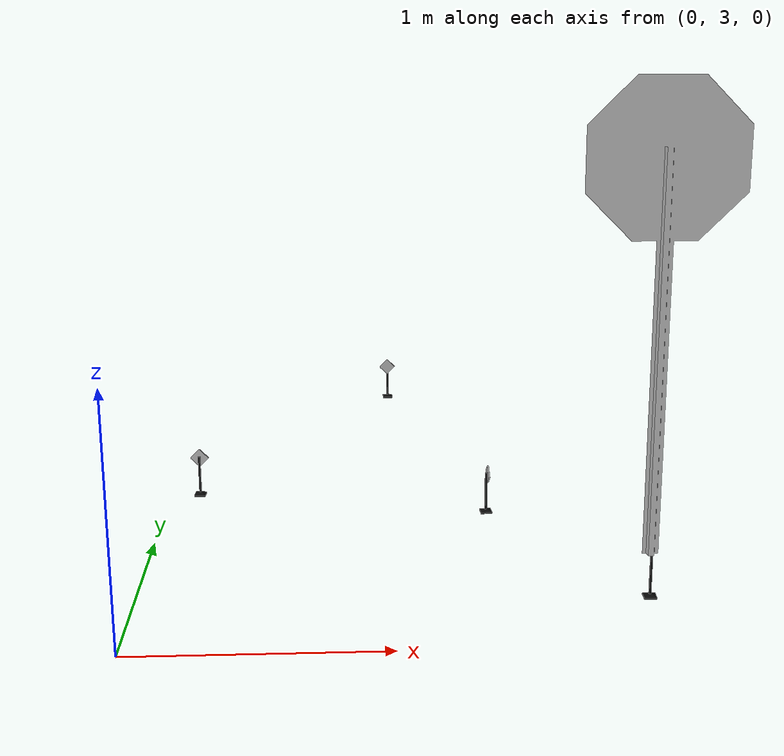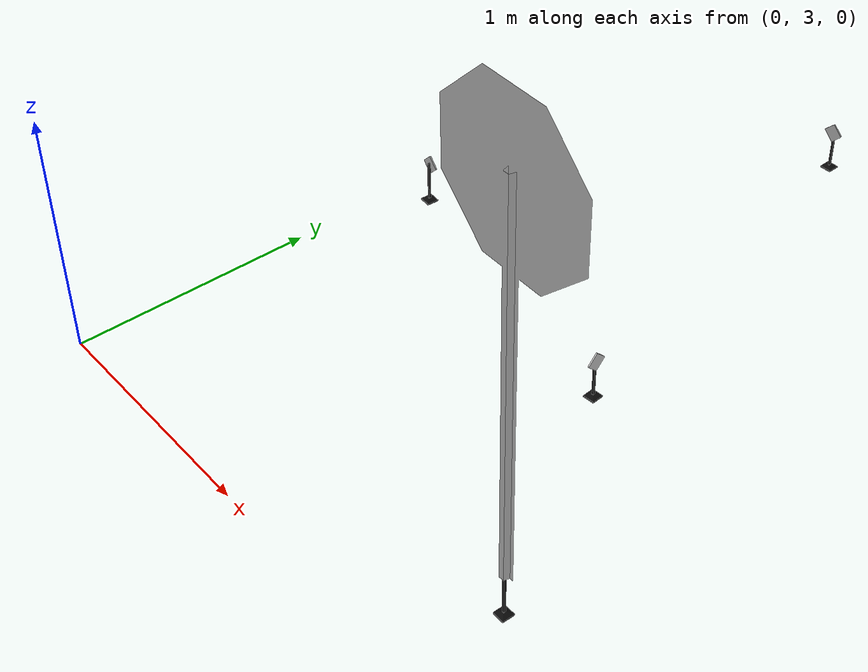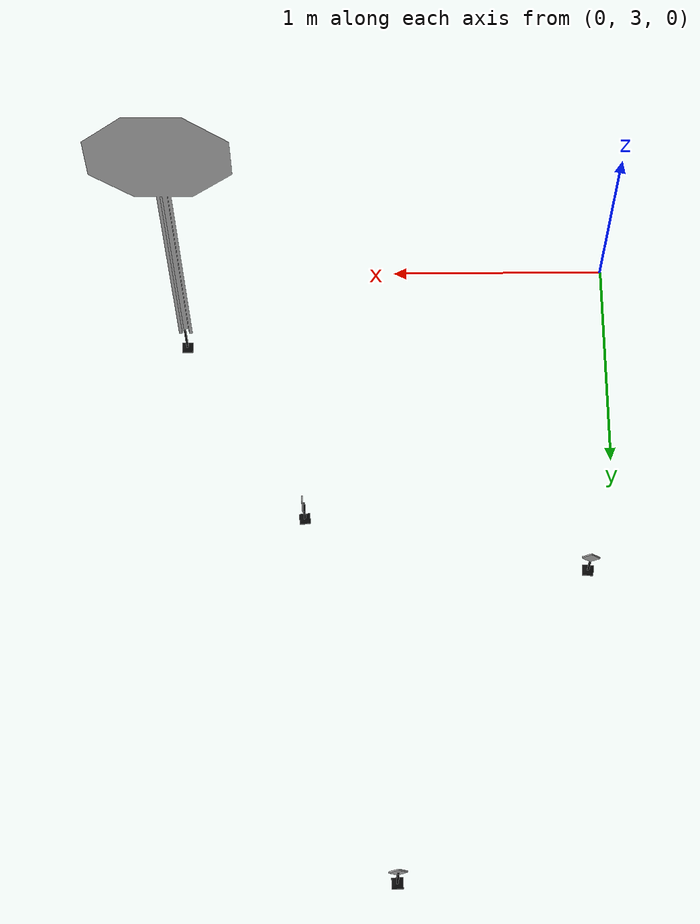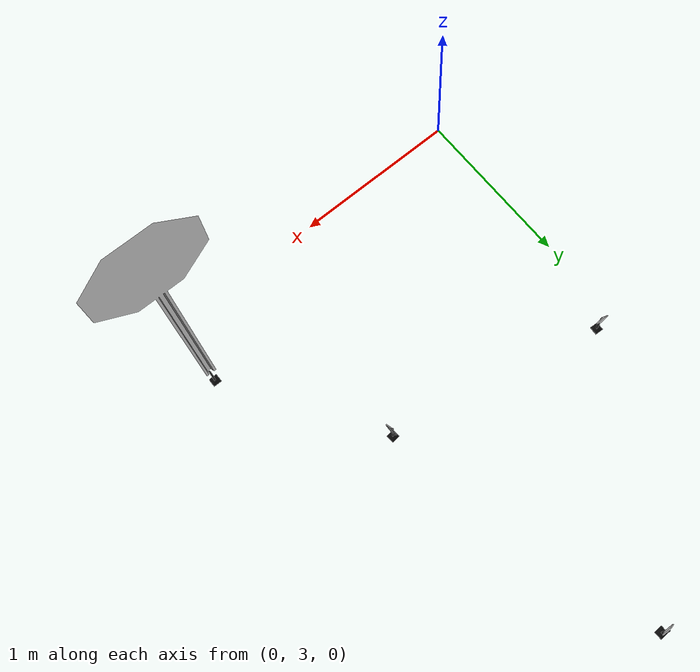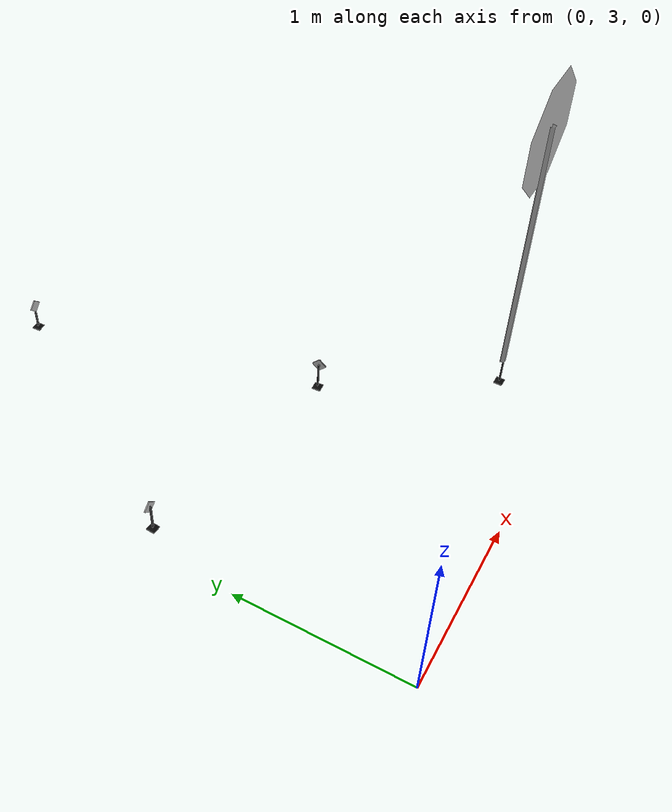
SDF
<sdf version="1.7">
 <world name="bfmc_official">
  <model name="PRIOR_I_clone_clone_0_clone">
   <static>1</static>
   <link name="sign_leg">
    <inertial>
     <mass>0.5</mass>
     <inertia>
      <ixx>0.166667</ixx>
      <ixy>0</ixy>
      <ixz>0</ixz>
      <iyy>0.166667</iyy>
      <iyz>0</iyz>
      <izz>0.166667</izz>
     </inertia>
     <pose>0 0 -0.078998 0 -0 0</pose>
    </inertial>
    <pose>0.002193 -0.000682 -0.07606 0 -0 0</pose>
    <self_collide>1</self_collide>
    <enable_wind>1</enable_wind>
    <visual name="visual">
     <geometry><mesh><uri>model://subassembly/meshes/sign_leg.dae</uri><scale>1 1 1</scale></mesh></geometry>
    </visual>
    <collision name="collision">
     <geometry><mesh><uri>model://subassembly/meshes/sign_leg.dae</uri><scale>1 1 1</scale></mesh></geometry>
     <surface>
      <friction>
       <ode><mu>0.46</mu><mu2>1</mu2><fdir1>0 0 0</fdir1><slip1>0</slip1><slip2>0</slip2></ode>
       <torsional>
        <coefficient>1</coefficient>
        <patch_radius>0</patch_radius>
        <surface_radius>0</surface_radius>
        <use_patch_radius>1</use_patch_radius>
        <ode><slip>0</slip></ode>
       </torsional>
      </friction>
      <bounce><restitution_coefficient>0</restitution_coefficient><threshold>1e+06</threshold></bounce>
      <contact>
       <collide_without_contact>0</collide_without_contact>
       <collide_without_contact_bitmask>1</collide_without_contact_bitmask>
       <collide_bitmask>1</collide_bitmask>
       <ode>
        <soft_cfm>0</soft_cfm>
        <soft_erp>0.2</soft_erp>
        <kp>1e+13</kp>
        <kd>1</kd>
        <max_vel>0.01</max_vel>
        <min_depth>0</min_depth>
       </ode>
       <bullet>
        <split_impulse>1</split_impulse>
        <split_impulse_penetration_threshold>-0.01</split_impulse_penetration_threshold>
        <soft_cfm>0</soft_cfm>
        <soft_erp>0.2</soft_erp>
        <kp>1e+13</kp>
        <kd>1</kd>
       </bullet>
      </contact>
     </surface>
    </collision>
   </link>
   <link name="caro_support">
    <inertial>
     <mass>0.022</mass>
     <inertia>
      <ixx>0.166667</ixx>
      <ixy>0</ixy>
      <ixz>0</ixz>
      <iyy>0.166667</iyy>
      <iyz>0</iyz>
      <izz>0.166667</izz>
     </inertia>
    </inertial>
    <pose>-0.002193 0.000682 0.09894 0 -0 3.14159</pose>
    <self_collide>1</self_collide>
    <enable_wind>1</enable_wind>
    <visual name="visual">
     <geometry>
      <mesh><uri>model://priority_sign/meshes/priority_sign.dae</uri><scale>1 1 1</scale></mesh>
     </geometry>
     <material>
      <lighting>1</lighting>
      <script>
       <uri>model://priority_sign/materials/scripts</uri>
       <uri>model://priority_sign/materials/textures</uri>
       <name>PRIORITY_SIGN</name>
      </script>
      <shader type="vertex"><normal_map>__default__</normal_map></shader>
      <ambient>0.3 0.3 0.3 1</ambient>
      <diffuse>0.7 0.7 0.7 1</diffuse>
      <specular>0.01 0.01 0.01 1</specular>
      <emissive>0 0 0 1</emissive>
     </material>
    </visual>
    <collision name="collision">
     <geometry>
      <mesh><uri>model://priority_sign/meshes/priority_sign.dae</uri><scale>1 1 1</scale></mesh>
     </geometry>
     <surface>
      <friction>
       <ode><mu>0.46</mu><mu2>1</mu2><fdir1>0 0 0</fdir1><slip1>0</slip1><slip2>0</slip2></ode>
       <torsional>
        <coefficient>1</coefficient>
        <patch_radius>0</patch_radius>
        <surface_radius>0</surface_radius>
        <use_patch_radius>1</use_patch_radius>
        <ode><slip>0</slip></ode>
       </torsional>
      </friction>
      <bounce><restitution_coefficient>0</restitution_coefficient><threshold>1e+06</threshold></bounce>
      <contact>
       <collide_without_contact>0</collide_without_contact>
       <collide_without_contact_bitmask>1</collide_without_contact_bitmask>
       <collide_bitmask>1</collide_bitmask>
       <ode>
        <soft_cfm>0</soft_cfm>
        <soft_erp>0.2</soft_erp>
        <kp>1e+13</kp>
        <kd>1</kd>
        <max_vel>0.01</max_vel>
        <min_depth>0</min_depth>
       </ode>
       <bullet>
        <split_impulse>1</split_impulse>
        <split_impulse_penetration_threshold>-0.01</split_impulse_penetration_threshold>
        <soft_cfm>0</soft_cfm>
        <soft_erp>0.2</soft_erp>
        <kp>1e+13</kp>
        <kd>1</kd>
       </bullet>
      </contact>
     </surface>
    </collision>
   </link>
   <joint name="support_to_leg_joint" type="fixed">
    <parent>link_0</parent>
    <child>link_1</child>
    <physics>
     <ode><limit><cfm>0</cfm><erp>0.2</erp></limit><suspension><cfm>0</cfm><erp>0.2</erp></suspension></ode>
    </physics>
   </joint>
   <static>1</static>
   <pose>1.02178 5.99387 0.078998 0 -0 1.61235</pose>
  </model>
  <model name="PRIOR_I_clone_clone_0_clone_0">
   <static>1</static>
   <link name="sign_leg">
    <inertial>
     <mass>0.5</mass>
     <inertia>
      <ixx>0.166667</ixx>
      <ixy>0</ixy>
      <ixz>0</ixz>
      <iyy>0.166667</iyy>
      <iyz>0</iyz>
      <izz>0.166667</izz>
     </inertia>
     <pose>0 0 -0.078998 0 -0 0</pose>
    </inertial>
    <pose>0.002193 -0.000682 -0.07606 0 -0 0</pose>
    <self_collide>1</self_collide>
    <enable_wind>1</enable_wind>
    <visual name="visual">
     <geometry><mesh><uri>model://subassembly/meshes/sign_leg.dae</uri><scale>1 1 1</scale></mesh></geometry>
    </visual>
    <collision name="collision">
     <geometry><mesh><uri>model://subassembly/meshes/sign_leg.dae</uri><scale>1 1 1</scale></mesh></geometry>
     <surface>
      <friction>
       <ode><mu>0.46</mu><mu2>1</mu2><fdir1>0 0 0</fdir1><slip1>0</slip1><slip2>0</slip2></ode>
       <torsional>
        <coefficient>1</coefficient>
        <patch_radius>0</patch_radius>
        <surface_radius>0</surface_radius>
        <use_patch_radius>1</use_patch_radius>
        <ode><slip>0</slip></ode>
       </torsional>
      </friction>
      <bounce><restitution_coefficient>0</restitution_coefficient><threshold>1e+06</threshold></bounce>
      <contact>
       <collide_without_contact>0</collide_without_contact>
       <collide_without_contact_bitmask>1</collide_without_contact_bitmask>
       <collide_bitmask>1</collide_bitmask>
       <ode>
        <soft_cfm>0</soft_cfm>
        <soft_erp>0.2</soft_erp>
        <kp>1e+13</kp>
        <kd>1</kd>
        <max_vel>0.01</max_vel>
        <min_depth>0</min_depth>
       </ode>
       <bullet>
        <split_impulse>1</split_impulse>
        <split_impulse_penetration_threshold>-0.01</split_impulse_penetration_threshold>
        <soft_cfm>0</soft_cfm>
        <soft_erp>0.2</soft_erp>
        <kp>1e+13</kp>
        <kd>1</kd>
       </bullet>
      </contact>
     </surface>
    </collision>
   </link>
   <link name="caro_support">
    <inertial>
     <mass>0.022</mass>
     <inertia>
      <ixx>0.166667</ixx>
      <ixy>0</ixy>
      <ixz>0</ixz>
      <iyy>0.166667</iyy>
      <iyz>0</iyz>
      <izz>0.166667</izz>
     </inertia>
    </inertial>
    <pose>-0.002193 0.000682 0.09894 0 -0 3.14159</pose>
    <self_collide>1</self_collide>
    <enable_wind>1</enable_wind>
    <visual name="visual">
     <geometry>
      <mesh><uri>model://priority_sign/meshes/priority_sign.dae</uri><scale>1 1 1</scale></mesh>
     </geometry>
     <material>
      <lighting>1</lighting>
      <script>
       <uri>model://priority_sign/materials/scripts</uri>
       <uri>model://priority_sign/materials/textures</uri>
       <name>PRIORITY_SIGN</name>
      </script>
      <shader type="vertex"><normal_map>__default__</normal_map></shader>
      <ambient>0.3 0.3 0.3 1</ambient>
      <diffuse>0.7 0.7 0.7 1</diffuse>
      <specular>0.01 0.01 0.01 1</specular>
      <emissive>0 0 0 1</emissive>
     </material>
    </visual>
    <collision name="collision">
     <geometry>
      <mesh><uri>model://priority_sign/meshes/priority_sign.dae</uri><scale>1 1 1</scale></mesh>
     </geometry>
     <surface>
      <friction>
       <ode><mu>0.46</mu><mu2>1</mu2><fdir1>0 0 0</fdir1><slip1>0</slip1><slip2>0</slip2></ode>
       <torsional>
        <coefficient>1</coefficient>
        <patch_radius>0</patch_radius>
        <surface_radius>0</surface_radius>
        <use_patch_radius>1</use_patch_radius>
        <ode><slip>0</slip></ode>
       </torsional>
      </friction>
      <bounce><restitution_coefficient>0</restitution_coefficient><threshold>1e+06</threshold></bounce>
      <contact>
       <collide_without_contact>0</collide_without_contact>
       <collide_without_contact_bitmask>1</collide_without_contact_bitmask>
       <collide_bitmask>1</collide_bitmask>
       <ode>
        <soft_cfm>0</soft_cfm>
        <soft_erp>0.2</soft_erp>
        <kp>1e+13</kp>
        <kd>1</kd>
        <max_vel>0.01</max_vel>
        <min_depth>0</min_depth>
       </ode>
       <bullet>
        <split_impulse>1</split_impulse>
        <split_impulse_penetration_threshold>-0.01</split_impulse_penetration_threshold>
        <soft_cfm>0</soft_cfm>
        <soft_erp>0.2</soft_erp>
        <kp>1e+13</kp>
        <kd>1</kd>
       </bullet>
      </contact>
     </surface>
    </collision>
   </link>
   <joint name="support_to_leg_joint" type="fixed">
    <parent>link_0</parent>
    <child>link_1</child>
    <physics>
     <ode><limit><cfm>0</cfm><erp>0.2</erp></limit><suspension><cfm>0</cfm><erp>0.2</erp></suspension></ode>
    </physics>
   </joint>
   <static>1</static>
   <pose>0.13431 4.55467 0.078998 0 0 -1.63218</pose>
  </model>
  <model name="STOP_I_clone_1_clone_2">
   <static>1</static>
   <link name="sign_leg">
    <inertial>
     <mass>0.5</mass>
     <inertia>
      <ixx>0.166667</ixx>
      <ixy>0</ixy>
      <ixz>0</ixz>
      <iyy>0.166667</iyy>
      <iyz>0</iyz>
      <izz>0.166667</izz>
     </inertia>
     <pose>0 0 -0.078998 0 -0 0</pose>
    </inertial>
    <pose>0.002193 -0.000682 -0.07606 0 -0 0</pose>
    <self_collide>1</self_collide>
    <enable_wind>1</enable_wind>
    <visual name="visual">
     <geometry><mesh><uri>model://subassembly/meshes/sign_leg.dae</uri><scale>1 1 1</scale></mesh></geometry>
    </visual>
    <collision name="collision">
     <geometry><mesh><uri>model://subassembly/meshes/sign_leg.dae</uri><scale>1 1 1</scale></mesh></geometry>
     <surface>
      <friction>
       <ode><mu>0.46</mu><mu2>1</mu2><fdir1>0 0 0</fdir1><slip1>0</slip1><slip2>0</slip2></ode>
       <torsional>
        <coefficient>1</coefficient>
        <patch_radius>0</patch_radius>
        <surface_radius>0</surface_radius>
        <use_patch_radius>1</use_patch_radius>
        <ode><slip>0</slip></ode>
       </torsional>
      </friction>
      <bounce><restitution_coefficient>0</restitution_coefficient><threshold>1e+06</threshold></bounce>
      <contact>
       <collide_without_contact>0</collide_without_contact>
       <collide_without_contact_bitmask>1</collide_without_contact_bitmask>
       <collide_bitmask>1</collide_bitmask>
       <ode>
        <soft_cfm>0</soft_cfm>
        <soft_erp>0.2</soft_erp>
        <kp>1e+13</kp>
        <kd>1</kd>
        <max_vel>0.01</max_vel>
        <min_depth>0</min_depth>
       </ode>
       <bullet>
        <split_impulse>1</split_impulse>
        <split_impulse_penetration_threshold>-0.01</split_impulse_penetration_threshold>
        <soft_cfm>0</soft_cfm>
        <soft_erp>0.2</soft_erp>
        <kp>1e+13</kp>
        <kd>1</kd>
       </bullet>
      </contact>
     </surface>
    </collision>
   </link>
   <link name="octagonal_support">
    <inertial>
     <mass>0.022</mass>
     <inertia>
      <ixx>0.166667</ixx>
      <ixy>0</ixy>
      <ixz>0</ixz>
      <iyy>0.166667</iyy>
      <iyz>0</iyz>
      <izz>0.166667</izz>
     </inertia>
    </inertial>
    <pose>-0.002193 0.000682 0.09894 0 -0 3.14159</pose>
    <self_collide>1</self_collide>
    <enable_wind>1</enable_wind>
    <visual name="visual">
     <geometry><mesh><uri>model://stop_sign/meshes/stop_sign.dae</uri><scale>1 1 1</scale></mesh></geometry>
     <material>
      <lighting>1</lighting>
      <script>
       <uri>model://stop_sign/materials/scripts</uri>
       <uri>model://stop_sign/materials/textures</uri>
       <name>STOP_SIGN</name>
      </script>
      <shader type="vertex"><normal_map>__default__</normal_map></shader>
      <ambient>0.3 0.3 0.3 1</ambient>
      <diffuse>0.7 0.7 0.7 1</diffuse>
      <specular>0.01 0.01 0.01 1</specular>
      <emissive>0 0 0 1</emissive>
     </material>
    </visual>
    <collision name="collision">
     <geometry><mesh><uri>model://stop_sign/meshes/stop_sign.dae</uri><scale>1 1 1</scale></mesh></geometry>
     <surface>
      <friction>
       <ode><mu>0.46</mu><mu2>1</mu2><fdir1>0 0 0</fdir1><slip1>0</slip1><slip2>0</slip2></ode>
       <torsional>
        <coefficient>1</coefficient>
        <patch_radius>0</patch_radius>
        <surface_radius>0</surface_radius>
        <use_patch_radius>1</use_patch_radius>
        <ode><slip>0</slip></ode>
       </torsional>
      </friction>
      <bounce><restitution_coefficient>0</restitution_coefficient><threshold>1e+06</threshold></bounce>
      <contact>
       <collide_without_contact>0</collide_without_contact>
       <collide_without_contact_bitmask>1</collide_without_contact_bitmask>
       <collide_bitmask>1</collide_bitmask>
       <ode>
        <soft_cfm>0</soft_cfm>
        <soft_erp>0.2</soft_erp>
        <kp>1e+13</kp>
        <kd>1</kd>
        <max_vel>0.01</max_vel>
        <min_depth>0</min_depth>
       </ode>
       <bullet>
        <split_impulse>1</split_impulse>
        <split_impulse_penetration_threshold>-0.01</split_impulse_penetration_threshold>
        <soft_cfm>0</soft_cfm>
        <soft_erp>0.2</soft_erp>
        <kp>1e+13</kp>
        <kd>1</kd>
       </bullet>
      </contact>
     </surface>
    </collision>
   </link>
   <joint name="support_to_leg_joint" type="fixed">
    <parent>link_0</parent>
    <child>link_1</child>
    <physics>
     <ode><limit><cfm>0</cfm><erp>0.2</erp></limit><suspension><cfm>0</cfm><erp>0.2</erp></suspension></ode>
    </physics>
   </joint>
   <static>1</static>
   <pose>1.98858 3.39811 0.078998 0 0 -0.007385</pose>
  </model>
  <model name="PRIOR_I_clone_clone_0_clone_clone">
   <static>1</static>
   <link name="sign_leg">
    <inertial>
     <mass>0.5</mass>
     <inertia>
      <ixx>0.166667</ixx>
      <ixy>0</ixy>
      <ixz>0</ixz>
      <iyy>0.166667</iyy>
      <iyz>0</iyz>
      <izz>0.166667</izz>
     </inertia>
     <pose>0 0 -0.078998 0 -0 0</pose>
    </inertial>
    <pose>0.002193 -0.000682 -0.07606 0 -0 0</pose>
    <self_collide>1</self_collide>
    <enable_wind>1</enable_wind>
    <visual name="visual">
     <geometry><mesh><uri>model://subassembly/meshes/sign_leg.dae</uri><scale>1 1 1</scale></mesh></geometry>
    </visual>
    <collision name="collision">
     <geometry><mesh><uri>model://subassembly/meshes/sign_leg.dae</uri><scale>1 1 1</scale></mesh></geometry>
     <surface>
      <friction>
       <ode><mu>0.46</mu><mu2>1</mu2><fdir1>0 0 0</fdir1><slip1>0</slip1><slip2>0</slip2></ode>
       <torsional>
        <coefficient>1</coefficient>
        <patch_radius>0</patch_radius>
        <surface_radius>0</surface_radius>
        <use_patch_radius>1</use_patch_radius>
        <ode><slip>0</slip></ode>
       </torsional>
      </friction>
      <bounce><restitution_coefficient>0</restitution_coefficient><threshold>1e+06</threshold></bounce>
      <contact>
       <collide_without_contact>0</collide_without_contact>
       <collide_without_contact_bitmask>1</collide_without_contact_bitmask>
       <collide_bitmask>1</collide_bitmask>
       <ode>
        <soft_cfm>0</soft_cfm>
        <soft_erp>0.2</soft_erp>
        <kp>1e+13</kp>
        <kd>1</kd>
        <max_vel>0.01</max_vel>
        <min_depth>0</min_depth>
       </ode>
       <bullet>
        <split_impulse>1</split_impulse>
        <split_impulse_penetration_threshold>-0.01</split_impulse_penetration_threshold>
        <soft_cfm>0</soft_cfm>
        <soft_erp>0.2</soft_erp>
        <kp>1e+13</kp>
        <kd>1</kd>
       </bullet>
      </contact>
     </surface>
    </collision>
   </link>
   <link name="caro_support">
    <inertial>
     <mass>0.022</mass>
     <inertia>
      <ixx>0.166667</ixx>
      <ixy>0</ixy>
      <ixz>0</ixz>
      <iyy>0.166667</iyy>
      <iyz>0</iyz>
      <izz>0.166667</izz>
     </inertia>
    </inertial>
    <pose>-0.002193 0.000682 0.09894 0 -0 3.14159</pose>
    <self_collide>1</self_collide>
    <enable_wind>1</enable_wind>
    <visual name="visual">
     <geometry>
      <mesh><uri>model://priority_sign/meshes/priority_sign.dae</uri><scale>1 1 1</scale></mesh>
     </geometry>
     <material>
      <lighting>1</lighting>
      <script>
       <uri>model://priority_sign/materials/scripts</uri>
       <uri>model://priority_sign/materials/textures</uri>
       <name>PRIORITY_SIGN</name>
      </script>
      <shader type="vertex"><normal_map>__default__</normal_map></shader>
      <ambient>0.3 0.3 0.3 1</ambient>
      <diffuse>0.7 0.7 0.7 1</diffuse>
      <specular>0.01 0.01 0.01 1</specular>
      <emissive>0 0 0 1</emissive>
     </material>
    </visual>
    <collision name="collision">
     <geometry>
      <mesh><uri>model://priority_sign/meshes/priority_sign.dae</uri><scale>1 1 1</scale></mesh>
     </geometry>
     <surface>
      <friction>
       <ode><mu>0.46</mu><mu2>1</mu2><fdir1>0 0 0</fdir1><slip1>0</slip1><slip2>0</slip2></ode>
       <torsional>
        <coefficient>1</coefficient>
        <patch_radius>0</patch_radius>
        <surface_radius>0</surface_radius>
        <use_patch_radius>1</use_patch_radius>
        <ode><slip>0</slip></ode>
       </torsional>
      </friction>
      <bounce><restitution_coefficient>0</restitution_coefficient><threshold>1e+06</threshold></bounce>
      <contact>
       <collide_without_contact>0</collide_without_contact>
       <collide_without_contact_bitmask>1</collide_without_contact_bitmask>
       <collide_bitmask>1</collide_bitmask>
       <ode>
        <soft_cfm>0</soft_cfm>
        <soft_erp>0.2</soft_erp>
        <kp>1e+13</kp>
        <kd>1</kd>
        <max_vel>0.01</max_vel>
        <min_depth>0</min_depth>
       </ode>
       <bullet>
        <split_impulse>1</split_impulse>
        <split_impulse_penetration_threshold>-0.01</split_impulse_penetration_threshold>
        <soft_cfm>0</soft_cfm>
        <soft_erp>0.2</soft_erp>
        <kp>1e+13</kp>
        <kd>1</kd>
       </bullet>
      </contact>
     </surface>
    </collision>
   </link>
   <joint name="support_to_leg_joint" type="fixed">
    <parent>link_0</parent>
    <child>link_1</child>
    <physics>
     <ode><limit><cfm>0</cfm><erp>0.2</erp></limit><suspension><cfm>0</cfm><erp>0.2</erp></suspension></ode>
    </physics>
   </joint>
   <static>1</static>
   <pose>1.43026 4.28773 0.078998 0 0 -3.05502</pose>
  </model>
 </world>
</sdf>
